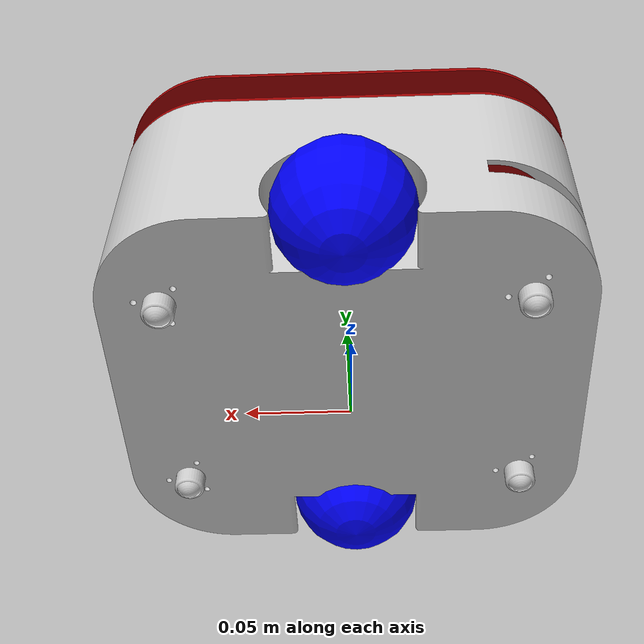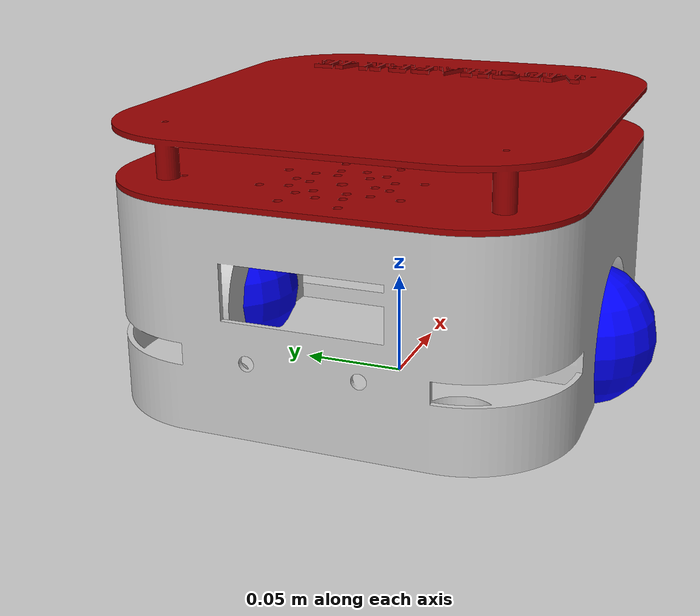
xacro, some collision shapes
<?xml version="1.0" ?>
<robot name="mechaprime" xmlns:xacro="http://www.ros.org/wiki/xacro">

    <link name="base_footprint"/>

    <link name="base_link">
        <inertial>
            <origin xyz="0.0 0.0 0.0" rpy="0.0 0.0 0.0"/>
            <mass value="5.0"/>
            <inertia ixx="0.001" ixy="0.0" ixz="0.0" iyy="0.001" iyz="0.0" izz="0.001"/>
        </inertial>
        <visual>
            <origin xyz="0.0 0.0 0.0" rpy="0.0 0.0 0.0"/>
            <geometry>
                <mesh filename="package://mechaprime_description/meshes/base_link.stl" scale="0.001 0.001 0.001"/>
            </geometry>
            <material name="grey">
                <color rgba="0.8 0.8 0.8 1.0"/>
            </material>
        </visual>
        <collision>
            <origin xyz="0.0 0.0 0.0" rpy="0.0 0.0 0.0"/>
            <geometry>
                <mesh filename="package://mechaprime_description/meshes/base_link.stl" scale="0.001 0.001 0.001"/>
            </geometry>
            <material name="grey">
                <color rgba="0.8 0.8 0.8 1.0"/>
            </material>
        </collision>
    </link>

    <joint name="base_joint" type="fixed">
        <origin xyz="0.0 0.0 0.0125" rpy="0.0 0.0 0.0"/>
        <parent link="base_footprint"/>
        <child link="base_link"/>
    </joint>

    <link name="right_wheel_link">
        <inertial>
            <origin xyz="0.0 -0.0925 -0.0215" rpy="0.0 0.0 0.0"/>
            <mass value="0.5"/>
            <inertia ixx="0.001" ixy="0.0" ixz="0.0" iyy="0.001" iyz="0.0" izz="0.001"/>
        </inertial>
        <visual>
            <origin xyz="0.0 -0.0925 -0.0215" rpy="0.0 0.0 0.0"/>
            <geometry>
                <mesh filename="package://mechaprime_description/meshes/right_wheel.stl" scale="0.001 0.001 0.001"/>
            </geometry>
            <material name="blue">
                <color rgba="0.0 0.0 1.0 1.0"/>
            </material>
        </visual>
         <collision>
            <origin xyz="0.0 0.0 -0.0" rpy="0.0 0.0 0.0"/>
            <geometry>
                <sphere radius="0.034"/>
            </geometry>
            <material name="blue">
                <color rgba="0.0 0.0 0.6 1.0"/>
            </material>
        </collision>
    </link>

    <joint name="right_wheel_joint" type="continuous">
        <origin xyz="0.0 -0.0925 0.0215" rpy="0.0 0.0 0.0"/>
        <parent link="base_link"/>
        <child link="right_wheel_link"/>
        <axis xyz="0.0 1.0 0.0"/>
    </joint>

    <link name="left_wheel_link">
        <inertial>
            <origin xyz="0.0 0.0925 -0.0215" rpy="0.0 0.0 0.0"/>
            <mass value="0.5"/>
            <inertia ixx="0.001" ixy="0.0" ixz="0.0" iyy="0.001" iyz="0.0" izz="0.001"/>
        </inertial>
        <visual>
            <origin xyz="0.0 0.0925 -0.0215" rpy="0.0 0.0 0.0"/>
            <geometry>
                <mesh filename="package://mechaprime_description/meshes/left_wheel.stl" scale="0.001 0.001 0.001"/>
            </geometry>
            <material name="blue">
                <color rgba="0.0 0.0 1.0 1.0"/>
            </material>
        </visual>
         <collision>
            <origin xyz="0.0 0.0 -0.0" rpy="0.0 0.0 0.0"/>
            <geometry>
                <sphere radius="0.034"/>
            </geometry>
            <material name="blue">
                <color rgba="0.0 0.0 0.6 1.0"/>
            </material>
        </collision>
    </link>

    <joint name="left_wheel_joint" type="continuous">
        <origin xyz="0.0 0.0925 0.0215" rpy="0.0 0.0 0.0"/>
        <parent link="base_link"/>
        <child link="left_wheel_link"/>
        <axis xyz="0.0 1.0 0.0"/>
    </joint>

    <link name="front_right_castor_link">
        <inertial>
            <origin xyz="-0.085 0.065 -0.00625" rpy="0.0 0.0 0.0"/>
            <mass value="0.2"/>
            <inertia ixx="0.001" ixy="0.0" ixz="0.0" iyy="0.001" iyz="0.0" izz="0.001"/>
        </inertial>
        <visual>
            <origin xyz="-0.085 0.065 -0.00625" rpy="0.0 0.0 0.0"/>
            <geometry>
                <mesh filename="package://mechaprime_description/meshes/front_right_castor.stl" scale="0.001 0.001 0.001"/>
            </geometry>
            <material name="grey">
                <color rgba="0.8 0.8 0.8 1.0"/>
            </material>
        </visual>
        <collision>
            <origin xyz="0.0 0.0065 -0.0125" rpy="0.0 0.0 0.0"/>
            <geometry>
                <sphere radius="0.00625"/>
                <!-- mesh filename="package://mechaprime_description/meshes/front_right_castor.stl" scale="0.001 0.001 0.001"/-->
            </geometry>
            <material name="grey">
                <color rgba="0.8 0.8 0.8 1.0"/>
            </material>
        </collision>
    </link>

    <joint name="front_right_castor_joint" type="fixed">
        <origin xyz="0.085 -0.065 0.00625" rpy="0.0 0.0 0.0"/>
        <parent link="base_link"/>
        <child link="front_right_castor_link"/>
    </joint>

    <link name="front_left_castor_link">
        <inertial>
            <origin xyz="-0.085 -0.065 -0.00625" rpy="0.0 0.0 0.0"/>
            <mass value="0.2"/>
            <inertia ixx="0.001" ixy="0.0" ixz="0.0" iyy="0.001" iyz="0.0" izz="0.001"/>
        </inertial>
        <visual>
            <origin xyz="-0.085 -0.065 -0.00625" rpy="0.0 0.0 0.0"/>
            <geometry>
                <mesh filename="package://mechaprime_description/meshes/front_left_castor.stl" scale="0.001 0.001 0.001"/>
            </geometry>
            <material name="grey">
                <color rgba="0.8 0.8 0.8 1.0"/>
            </material>
        </visual>
        <collision>
            <origin xyz="0.0 -0.0065 -0.0125" rpy="0.0 0.0 0.0"/>
            <geometry>
                <sphere radius="0.00625"/>
                <!-- mesh filename="package://mechaprime_description/meshes/front_left_castor.stl" scale="0.001 0.001 0.001"/-->
            </geometry>
            <material name="grey">
                <color rgba="0.8 0.8 0.8 1.0"/>
            </material>
        </collision>
    </link>

    <joint name="front_left_castor_joint" type="fixed">
        <origin xyz="0.085 0.065 0.00625" rpy="0.0 0.0 0.0"/>
        <parent link="base_link"/>
        <child link="front_left_castor_link"/>
    </joint>

    <link name="rear_left_castor_link">
        <inertial>
            <origin xyz="0.085 0.065 -0.00635" rpy="0.0 0.0 0.0"/>
            <mass value="0.2"/>
            <inertia ixx="0.001" ixy="0.0" ixz="0.0" iyy="0.001" iyz="0.0" izz="0.001"/>
        </inertial>
        <visual>
            <origin xyz="0.085 0.065 -0.00635" rpy="0.0 0.0 0.0"/>
            <geometry>
                <mesh filename="package://mechaprime_description/meshes/rear_left_castor.stl" scale="0.001 0.001 0.001"/>
            </geometry>
            <material name="grey">
                <color rgba="0.8 0.8 0.8 1.0"/>
            </material>
        </visual>
        <collision>
            <origin xyz="0.0 0.0065 -0.0125" rpy="0.0 0.0 0.0"/>
            <geometry>
                <sphere radius="0.00625"/>
                <!-- mesh filename="package://mechaprime_description/meshes/rear_left_castor.stl" scale="0.001 0.001 0.001"/-->
            </geometry>
            <material name="grey">
                <color rgba="0.8 0.8 0.8 1.0"/>
            </material>
        </collision>
    </link>

    <joint name="rear_left_castor_joint" type="fixed">
        <origin xyz="-0.085 -0.065 0.00635" rpy="0.0 0.0 0.0"/>
        <parent link="base_link"/>
        <child link="rear_left_castor_link"/>
    </joint>

    <link name="rear_right_castor_link">
        <inertial>
            <origin xyz="0.085 -0.065 -0.00635" rpy="0.0 0.0 0.0"/>
            <mass value="0.2"/>
            <inertia ixx="0.001" ixy="0.0" ixz="0.0" iyy="0.001" iyz="0.0" izz="0.001"/>
        </inertial>
        <visual>
            <origin xyz="0.085 -0.065 -0.00635" rpy="0.0 0.0 0.0"/>
            <geometry>
                <mesh filename="package://mechaprime_description/meshes/rear_right_castor.stl" scale="0.001 0.001 0.001"/>
            </geometry>
            <material name="grey">
                <color rgba="0.8 0.8 0.8 1.0"/>
            </material>
        </visual>
        <collision>
            <origin xyz="0.0 -0.0065 -0.0125" rpy="0.0 0.0 0.0"/>
            <geometry>
                <sphere radius="0.00625"/>
                <!-- mesh filename="package://mechaprime_description/meshes/rear_right_castor.stl" scale="0.001 0.001 0.001"/-->
            </geometry>
            <material name="grey">
                <color rgba="0.8 0.8 0.8 1.0"/>
            </material>
        </collision>
    </link>

    <joint name="rear_right_castor_joint" type="fixed">
        <origin xyz="-0.085 0.065 0.00635" rpy="0.0 0.0 0.0"/>
        <parent link="base_link"/>
        <child link="rear_right_castor_link"/>
    </joint>

    <link name="top_lid_link">
        <inertial>
            <origin xyz="0.0 0.0 -0.001125" rpy="0.0 0.0 0.0"/>
            <mass value="2.0"/>
            <inertia ixx="0.001" ixy="0.0" ixz="0.0" iyy="0.001" iyz="0.0" izz="0.001"/>
        </inertial>
        <visual>
            <origin xyz="0.0 0.0 -0.1125" rpy="0.0 0.0 0.0"/>
            <geometry>
                <mesh filename="package://mechaprime_description/meshes/top_lid.stl" scale="0.001 0.001 0.001"/>
            </geometry>
            <material name="red">
                <color rgba="0.6 0.0 0.0 1.0"/>
            </material>
        </visual>
        <collision>
            <origin xyz="0.0 0.0 -0.1125" rpy="0.0 0.0 0.0"/>
            <geometry>
                <mesh filename="package://mechaprime_description/meshes/top_lid.stl" scale="0.001 0.001 0.001"/>
            </geometry>
            <material name="red">
                <color rgba="0.6 0.0 0.0 1.0"/>
            </material>
        </collision>
    </link>

    <joint name="top_lid_joint" type="fixed">
        <origin xyz="0.0 0.0 0.1125" rpy="0.0 0.0 0.0"/>
        <parent link="base_link"/>
        <child link="top_lid_link"/>
    </joint>

    <link name="ex_plate_link">
        <inertial>
            <origin xyz="0.0 0.0 -0.001225" rpy="0.0 0.0 0.0"/>
            <mass value="2.0"/>
            <inertia ixx="0.001" ixy="0.0" ixz="0.0" iyy="0.001" iyz="0.0" izz="0.001"/>
        </inertial>
        <visual>
            <origin xyz="0.0 0.0 -0.1225" rpy="0.0 0.0 0.0"/>
            <geometry>
                <mesh filename="package://mechaprime_description/meshes/ex_plate.stl" scale="0.001 0.001 0.001"/>
            </geometry>
            <material name="red">
                <color rgba="0.6 0.0 0.0 1.0"/>
            </material>
        </visual>
        <collision>
            <origin xyz="0.0 0.0 -0.1225" rpy="0.0 0.0 0.0"/>
            <geometry>
                <mesh filename="package://mechaprime_description/meshes/ex_plate.stl" scale="0.001 0.001 0.001"/>
            </geometry>
            <material name="red">
                <color rgba="0.6 0.0 0.0 1.0"/>
            </material>
        </collision>
    </link>

    <joint name="ex_plate_joint" type="fixed">
        <origin xyz="0.0 0.0 0.1225" rpy="0.0 0.0 0.0"/>
        <parent link="base_link"/>
        <child link="ex_plate_link"/>
    </joint>

</robot>
